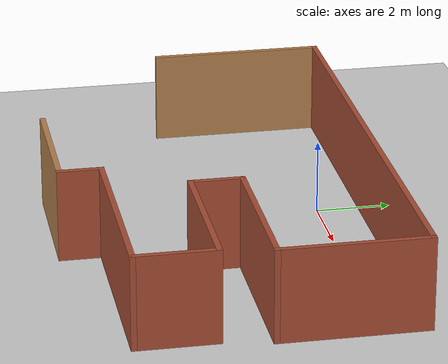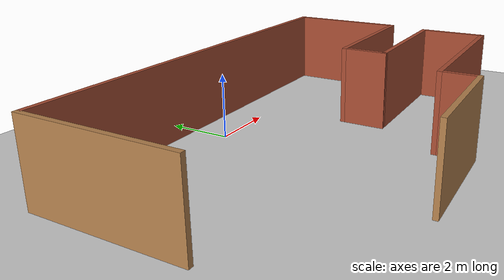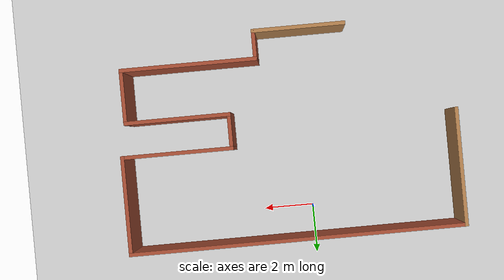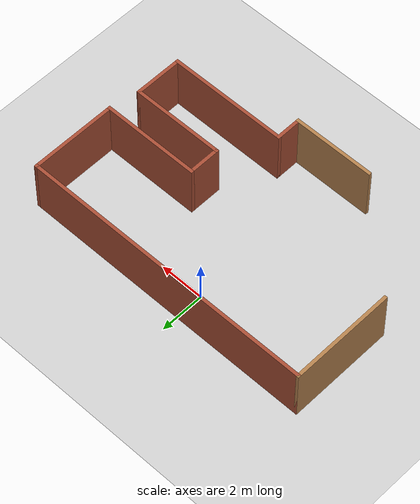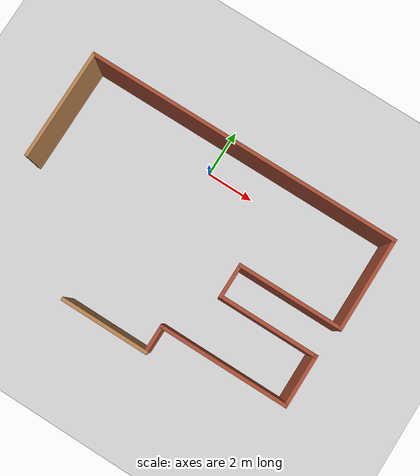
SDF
<sdf version="1.7">
 <world name="default">
  <light name="sun" type="directional">
   <pose>0 0 10 0 -0 0</pose>
   <diffuse>0.8 0.8 0.8 1</diffuse>
   <specular>0.2 0.2 0.2 1</specular>
   <attenuation>
    <range>1000</range>
    <constant>0.9</constant>
    <linear>0.01</linear>
    <quadratic>0.001</quadratic>
   </attenuation>
   <direction>-0.5 0.1 -0.9</direction>
   <spot><inner_angle>0</inner_angle><outer_angle>0</outer_angle><falloff>0</falloff></spot>
  </light>
  <model name="ground_plane">
   <static>1</static>
   <link name="link">
    <collision name="collision">
     <geometry><plane><normal>0 0 1</normal><size>100 100</size></plane></geometry>
     <surface>
      <contact><collide_bitmask>65535</collide_bitmask></contact>
      <friction><ode><mu>100</mu><mu2>50</mu2></ode></friction>
     </surface>
    </collision>
    <visual name="visual">
     <cast_shadows>0</cast_shadows>
     <geometry><plane><normal>0 0 1</normal><size>100 100</size></plane></geometry>
     <material>
      <script><uri>file://media/materials/scripts/gazebo.material</uri><name>Gazebo/Grey</name></script>
     </material>
    </visual>
   </link>
  </model>
  <gravity>0 0 -9.8</gravity>
  <magnetic_field>6e-06 2.3e-05 -4.2e-05</magnetic_field>
  <atmosphere type="adiabatic"/>
  <physics type="ode">
   <max_step_size>0.001</max_step_size>
   <real_time_factor>1</real_time_factor>
   <real_time_update_rate>1000</real_time_update_rate>
  </physics>
  <scene><ambient>0.4 0.4 0.4 1</ambient><background>0.7 0.7 0.7 1</background><shadows>1</shadows></scene>
  <audio><device>default</device></audio>
  <spherical_coordinates>
   <surface_model>EARTH_WGS84</surface_model>
   <latitude_deg>0</latitude_deg>
   <longitude_deg>0</longitude_deg>
   <elevation>0</elevation>
   <heading_deg>0</heading_deg>
  </spherical_coordinates>
  <model name="example_world">
   <pose>0.715993 -2.99396 0 0 -0 0</pose>
   <link name="Wall_0">
    <collision name="Wall_0_Collision">
     <geometry><box><size>4.75 0.15 2.5</size></box></geometry>
     <pose>0 0 1.25 0 -0 0</pose>
    </collision>
    <visual name="Wall_0_Visual">
     <pose>0 0 1.25 0 -0 0</pose>
     <geometry><box><size>4.75 0.15 2.5</size></box></geometry>
     <material>
      <script><uri>file://media/materials/scripts/gazebo.material</uri><name>Gazebo/Wood</name></script>
      <ambient>1 1 1 1</ambient>
     </material>
     <meta><layer>0</layer></meta>
    </visual>
    <pose>-6.675 1.9 0 0 -0 1.5708</pose>
   </link>
   <link name="Wall_1">
    <collision name="Wall_1_Collision">
     <geometry><box><size>13.5 0.15 2.5</size></box></geometry>
     <pose>0 0 1.25 0 -0 0</pose>
    </collision>
    <visual name="Wall_1_Visual">
     <pose>0 0 1.25 0 -0 0</pose>
     <geometry><box><size>13.5 0.15 2.5</size></box></geometry>
     <material>
      <script><uri>file://media/materials/scripts/gazebo.material</uri><name>Gazebo/Bricks</name></script>
      <ambient>1 1 1 1</ambient>
     </material>
     <meta><layer>0</layer></meta>
    </visual>
    <pose>0 4.2 0 0 -0 0</pose>
   </link>
   <link name="Wall_2">
    <collision name="Wall_2_Collision">
     <geometry><box><size>4 0.15 2.5</size></box></geometry>
     <pose>0 0 1.25 0 -0 0</pose>
    </collision>
    <visual name="Wall_2_Visual">
     <pose>0 0 1.25 0 -0 0</pose>
     <geometry><box><size>4 0.15 2.5</size></box></geometry>
     <material>
      <script><uri>file://media/materials/scripts/gazebo.material</uri><name>Gazebo/Bricks</name></script>
      <ambient>1 1 1 1</ambient>
     </material>
     <meta><layer>0</layer></meta>
    </visual>
    <pose>6.675 2.275 0 0 -0 -1.5708</pose>
   </link>
   <link name="Wall_3">
    <collision name="Wall_3_Collision">
     <geometry><box><size>4.5 0.15 2.5</size></box></geometry>
     <pose>0 0 1.25 0 -0 0</pose>
    </collision>
    <visual name="Wall_3_Visual">
     <pose>0 0 1.25 0 -0 0</pose>
     <geometry><box><size>4.5 0.15 2.5</size></box></geometry>
     <material>
      <script><uri>file://media/materials/scripts/gazebo.material</uri><name>Gazebo/Bricks</name></script>
      <ambient>1 1 1 1</ambient>
     </material>
     <meta><layer>0</layer></meta>
    </visual>
    <pose>4.5 0.35 0 0 -0 3.14159</pose>
   </link>
   <link name="Wall_4">
    <collision name="Wall_4_Collision">
     <geometry><box><size>1.5 0.15 2.5</size></box></geometry>
     <pose>0 0 1.25 0 -0 0</pose>
    </collision>
    <visual name="Wall_4_Visual">
     <pose>0 0 1.25 0 -0 0</pose>
     <geometry><box><size>1.5 0.15 2.5</size></box></geometry>
     <material>
      <script><uri>file://media/materials/scripts/gazebo.material</uri><name>Gazebo/Bricks</name></script>
      <ambient>1 1 1 1</ambient>
     </material>
     <meta><layer>0</layer></meta>
    </visual>
    <pose>2.325 -0.325 0 0 -0 -1.5708</pose>
   </link>
   <link name="Wall_5">
    <collision name="Wall_5_Collision">
     <geometry><box><size>4.25 0.15 2.5</size></box></geometry>
     <pose>0 0 1.25 0 -0 0</pose>
    </collision>
    <visual name="Wall_5_Visual">
     <pose>0 0 1.25 0 -0 0</pose>
     <geometry><box><size>4.25 0.15 2.5</size></box></geometry>
     <material>
      <script><uri>file://media/materials/scripts/gazebo.material</uri><name>Gazebo/Bricks</name></script>
      <ambient>1 1 1 1</ambient>
     </material>
     <meta><layer>0</layer></meta>
    </visual>
    <pose>4.375 -1 0 0 -0 0</pose>
   </link>
   <link name="Wall_6">
    <collision name="Wall_6_Collision">
     <geometry><box><size>2.25 0.15 2.5</size></box></geometry>
     <pose>0 0 1.25 0 -0 0</pose>
    </collision>
    <visual name="Wall_6_Visual">
     <pose>0 0 1.25 0 -0 0</pose>
     <geometry><box><size>2.25 0.15 2.5</size></box></geometry>
     <material>
      <script><uri>file://media/materials/scripts/gazebo.material</uri><name>Gazebo/Bricks</name></script>
      <ambient>1 1 1 1</ambient>
     </material>
     <meta><layer>0</layer></meta>
    </visual>
    <pose>6.425 -2.05 0 0 -0 -1.5708</pose>
   </link>
   <link name="Wall_7">
    <collision name="Wall_7_Collision">
     <geometry><box><size>5.5 0.15 2.5</size></box></geometry>
     <pose>0 0 1.25 0 -0 0</pose>
    </collision>
    <visual name="Wall_7_Visual">
     <pose>0 0 1.25 0 -0 0</pose>
     <geometry><box><size>5.5 0.15 2.5</size></box></geometry>
     <material>
      <script><uri>file://media/materials/scripts/gazebo.material</uri><name>Gazebo/Bricks</name></script>
      <ambient>1 1 1 1</ambient>
     </material>
     <meta><layer>0</layer></meta>
    </visual>
    <pose>3.75 -3.1 0 0 -0 3.14159</pose>
   </link>
   <link name="Wall_8">
    <collision name="Wall_8_Collision">
     <geometry><box><size>1.25 0.15 2.5</size></box></geometry>
     <pose>0 0 1.25 0 -0 0</pose>
    </collision>
    <visual name="Wall_8_Visual">
     <pose>0 0 1.25 0 -0 0</pose>
     <geometry><box><size>1.25 0.15 2.5</size></box></geometry>
     <material>
      <script><uri>file://media/materials/scripts/gazebo.material</uri><name>Gazebo/Bricks</name></script>
      <ambient>1 1 1 1</ambient>
     </material>
     <meta><layer>0</layer></meta>
    </visual>
    <pose>1.075 -3.65 0 0 -0 -1.5708</pose>
   </link>
   <link name="Wall_9">
    <collision name="Wall_9_Collision">
     <geometry><box><size>3.75 0.15 2.5</size></box></geometry>
     <pose>0 0 1.25 0 -0 0</pose>
    </collision>
    <visual name="Wall_9_Visual">
     <pose>0 0 1.25 0 -0 0</pose>
     <geometry><box><size>3.75 0.15 2.5</size></box></geometry>
     <material>
      <script><uri>file://media/materials/scripts/gazebo.material</uri><name>Gazebo/Wood</name></script>
      <ambient>1 1 1 1</ambient>
     </material>
     <meta><layer>0</layer></meta>
    </visual>
    <pose>-0.725 -4.2 0 0 -0 3.14159</pose>
   </link>
   <static>1</static>
  </model>
 </world>
</sdf>
